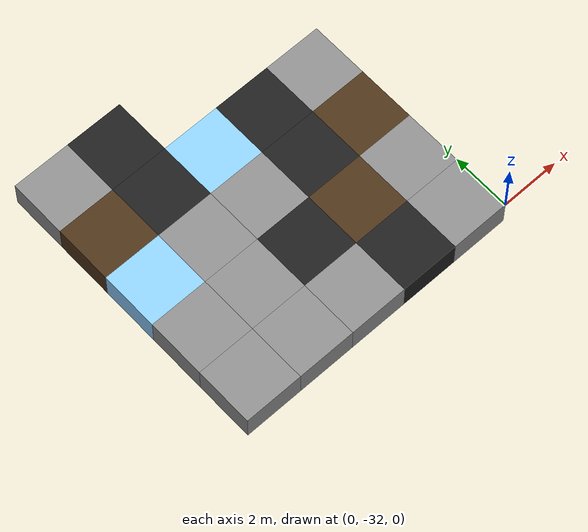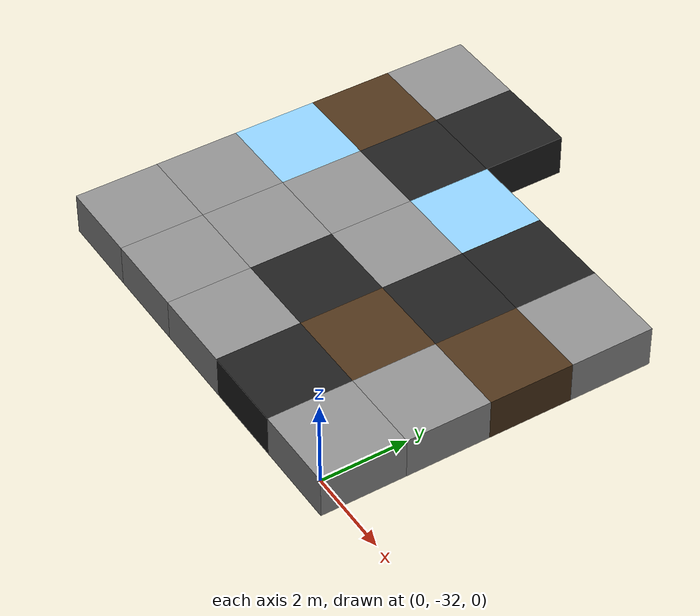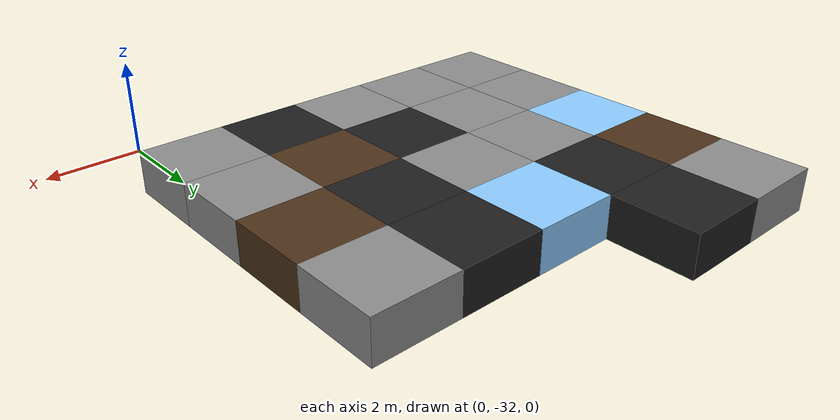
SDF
<sdf version="1.5">
 <world name="squares_example">
  <model name="tile_11_0">
   <static>true</static>
   <pose>-9.000 -31.000 -0.500 0 0 0</pose>
   <link name="link">
    <collision name="col">
     <geometry><box><size>2.0 2.0 1.0</size></box></geometry>
     <surface>
      <friction>
       <ode><mu>0.8</mu><mu2>0.3</mu2><fdir1>1 0 0</fdir1><slip1>0.0</slip1><slip2>0.0</slip2></ode>
       <torsional>
        <coefficient>0.03</coefficient>
        <use_patch_radius>false</use_patch_radius>
        <surface_radius>0.12</surface_radius>
        <ode><slip>0.0</slip></ode>
       </torsional>
      </friction>
      <bounce><restitution_coefficient>0.0</restitution_coefficient><threshold>0.1</threshold></bounce>
      <contact>
       <ode><kp>10000000000.0</kp><kd>10000000.0</kd><max_vel>0.01</max_vel><min_depth>0.0</min_depth></ode>
      </contact>
     </surface>
    </collision>
    <visual name="visual">
     <geometry><box><size>2.0 2.0 1.0</size></box></geometry>
     <material>
      <diffuse>0.55 0.55 0.55 1</diffuse>
      <ambient>0 0 0 0</ambient>
      <specular>0 0 0 1</specular>
      <emissive>0 0 0 1</emissive>
     </material>
    </visual>
   </link>
  </model>
  <model name="tile_12_0">
   <static>true</static>
   <pose>-7.000 -31.000 -0.500 0 0 0</pose>
   <link name="link">
    <collision name="col">
     <geometry><box><size>2.0 2.0 1.0</size></box></geometry>
     <surface>
      <friction>
       <ode><mu>0.8</mu><mu2>0.3</mu2><fdir1>1 0 0</fdir1><slip1>0.0</slip1><slip2>0.0</slip2></ode>
       <torsional>
        <coefficient>0.03</coefficient>
        <use_patch_radius>false</use_patch_radius>
        <surface_radius>0.12</surface_radius>
        <ode><slip>0.0</slip></ode>
       </torsional>
      </friction>
      <bounce><restitution_coefficient>0.0</restitution_coefficient><threshold>0.1</threshold></bounce>
      <contact>
       <ode><kp>10000000000.0</kp><kd>10000000.0</kd><max_vel>0.01</max_vel><min_depth>0.0</min_depth></ode>
      </contact>
     </surface>
    </collision>
    <visual name="visual">
     <geometry><box><size>2.0 2.0 1.0</size></box></geometry>
     <material>
      <diffuse>0.55 0.55 0.55 1</diffuse>
      <ambient>0 0 0 0</ambient>
      <specular>0 0 0 1</specular>
      <emissive>0 0 0 1</emissive>
     </material>
    </visual>
   </link>
  </model>
  <model name="tile_13_0">
   <static>true</static>
   <pose>-5.000 -31.000 -0.500 0 0 0</pose>
   <link name="link">
    <collision name="col">
     <geometry><box><size>2.0 2.0 1.0</size></box></geometry>
     <surface>
      <friction>
       <ode><mu>0.8</mu><mu2>0.3</mu2><fdir1>1 0 0</fdir1><slip1>0.0</slip1><slip2>0.0</slip2></ode>
       <torsional>
        <coefficient>0.03</coefficient>
        <use_patch_radius>false</use_patch_radius>
        <surface_radius>0.12</surface_radius>
        <ode><slip>0.0</slip></ode>
       </torsional>
      </friction>
      <bounce><restitution_coefficient>0.0</restitution_coefficient><threshold>0.1</threshold></bounce>
      <contact>
       <ode><kp>10000000000.0</kp><kd>10000000.0</kd><max_vel>0.01</max_vel><min_depth>0.0</min_depth></ode>
      </contact>
     </surface>
    </collision>
    <visual name="visual">
     <geometry><box><size>2.0 2.0 1.0</size></box></geometry>
     <material>
      <diffuse>0.55 0.55 0.55 1</diffuse>
      <ambient>0 0 0 0</ambient>
      <specular>0 0 0 1</specular>
      <emissive>0 0 0 1</emissive>
     </material>
    </visual>
   </link>
  </model>
  <model name="tile_14_0">
   <static>true</static>
   <pose>-3.000 -31.000 -0.500 0 0 0</pose>
   <link name="link">
    <collision name="col">
     <geometry><box><size>2.0 2.0 1.0</size></box></geometry>
     <surface>
      <friction>
       <ode><mu>0.4</mu><mu2>0.15</mu2><fdir1>1 0 0</fdir1><slip1>0.0</slip1><slip2>0.0</slip2></ode>
       <torsional>
        <coefficient>0.03</coefficient>
        <use_patch_radius>false</use_patch_radius>
        <surface_radius>0.12</surface_radius>
        <ode><slip>0.0</slip></ode>
       </torsional>
      </friction>
      <bounce><restitution_coefficient>0.0</restitution_coefficient><threshold>0.1</threshold></bounce>
      <contact>
       <ode><kp>1000000000.0</kp><kd>1000000.0</kd><max_vel>0.01</max_vel><min_depth>0.0</min_depth></ode>
      </contact>
     </surface>
    </collision>
    <visual name="visual">
     <geometry><box><size>2.0 2.0 1.0</size></box></geometry>
     <material>
      <diffuse>0.12 0.12 0.12 1</diffuse>
      <ambient>0 0 0 0</ambient>
      <specular>0 0 0 1</specular>
      <emissive>0 0 0 1</emissive>
     </material>
    </visual>
   </link>
  </model>
  <model name="tile_15_0">
   <static>true</static>
   <pose>-1.000 -31.000 -0.500 0 0 0</pose>
   <link name="link">
    <collision name="col">
     <geometry><box><size>2.0 2.0 1.0</size></box></geometry>
     <surface>
      <friction>
       <ode><mu>0.8</mu><mu2>0.3</mu2><fdir1>1 0 0</fdir1><slip1>0.0</slip1><slip2>0.0</slip2></ode>
       <torsional>
        <coefficient>0.03</coefficient>
        <use_patch_radius>false</use_patch_radius>
        <surface_radius>0.12</surface_radius>
        <ode><slip>0.0</slip></ode>
       </torsional>
      </friction>
      <bounce><restitution_coefficient>0.0</restitution_coefficient><threshold>0.1</threshold></bounce>
      <contact>
       <ode><kp>10000000000.0</kp><kd>10000000.0</kd><max_vel>0.01</max_vel><min_depth>0.0</min_depth></ode>
      </contact>
     </surface>
    </collision>
    <visual name="visual">
     <geometry><box><size>2.0 2.0 1.0</size></box></geometry>
     <material>
      <diffuse>0.55 0.55 0.55 1</diffuse>
      <ambient>0 0 0 0</ambient>
      <specular>0 0 0 1</specular>
      <emissive>0 0 0 1</emissive>
     </material>
    </visual>
   </link>
  </model>
  <model name="tile_11_1">
   <static>true</static>
   <pose>-9.000 -29.000 -0.500 0 0 0</pose>
   <link name="link">
    <collision name="col">
     <geometry><box><size>2.0 2.0 1.0</size></box></geometry>
     <surface>
      <friction>
       <ode><mu>0.8</mu><mu2>0.3</mu2><fdir1>1 0 0</fdir1><slip1>0.0</slip1><slip2>0.0</slip2></ode>
       <torsional>
        <coefficient>0.03</coefficient>
        <use_patch_radius>false</use_patch_radius>
        <surface_radius>0.12</surface_radius>
        <ode><slip>0.0</slip></ode>
       </torsional>
      </friction>
      <bounce><restitution_coefficient>0.0</restitution_coefficient><threshold>0.1</threshold></bounce>
      <contact>
       <ode><kp>10000000000.0</kp><kd>10000000.0</kd><max_vel>0.01</max_vel><min_depth>0.0</min_depth></ode>
      </contact>
     </surface>
    </collision>
    <visual name="visual">
     <geometry><box><size>2.0 2.0 1.0</size></box></geometry>
     <material>
      <diffuse>0.55 0.55 0.55 1</diffuse>
      <ambient>0 0 0 0</ambient>
      <specular>0 0 0 1</specular>
      <emissive>0 0 0 1</emissive>
     </material>
    </visual>
   </link>
  </model>
  <model name="tile_12_1">
   <static>true</static>
   <pose>-7.000 -29.000 -0.500 0 0 0</pose>
   <link name="link">
    <collision name="col">
     <geometry><box><size>2.0 2.0 1.0</size></box></geometry>
     <surface>
      <friction>
       <ode><mu>0.8</mu><mu2>0.3</mu2><fdir1>1 0 0</fdir1><slip1>0.0</slip1><slip2>0.0</slip2></ode>
       <torsional>
        <coefficient>0.03</coefficient>
        <use_patch_radius>false</use_patch_radius>
        <surface_radius>0.12</surface_radius>
        <ode><slip>0.0</slip></ode>
       </torsional>
      </friction>
      <bounce><restitution_coefficient>0.0</restitution_coefficient><threshold>0.1</threshold></bounce>
      <contact>
       <ode><kp>10000000000.0</kp><kd>10000000.0</kd><max_vel>0.01</max_vel><min_depth>0.0</min_depth></ode>
      </contact>
     </surface>
    </collision>
    <visual name="visual">
     <geometry><box><size>2.0 2.0 1.0</size></box></geometry>
     <material>
      <diffuse>0.55 0.55 0.55 1</diffuse>
      <ambient>0 0 0 0</ambient>
      <specular>0 0 0 1</specular>
      <emissive>0 0 0 1</emissive>
     </material>
    </visual>
   </link>
  </model>
  <model name="tile_13_1">
   <static>true</static>
   <pose>-5.000 -29.000 -0.500 0 0 0</pose>
   <link name="link">
    <collision name="col">
     <geometry><box><size>2.0 2.0 1.0</size></box></geometry>
     <surface>
      <friction>
       <ode><mu>0.4</mu><mu2>0.15</mu2><fdir1>1 0 0</fdir1><slip1>0.0</slip1><slip2>0.0</slip2></ode>
       <torsional>
        <coefficient>0.03</coefficient>
        <use_patch_radius>false</use_patch_radius>
        <surface_radius>0.12</surface_radius>
        <ode><slip>0.0</slip></ode>
       </torsional>
      </friction>
      <bounce><restitution_coefficient>0.0</restitution_coefficient><threshold>0.1</threshold></bounce>
      <contact>
       <ode><kp>1000000000.0</kp><kd>1000000.0</kd><max_vel>0.01</max_vel><min_depth>0.0</min_depth></ode>
      </contact>
     </surface>
    </collision>
    <visual name="visual">
     <geometry><box><size>2.0 2.0 1.0</size></box></geometry>
     <material>
      <diffuse>0.12 0.12 0.12 1</diffuse>
      <ambient>0 0 0 0</ambient>
      <specular>0 0 0 1</specular>
      <emissive>0 0 0 1</emissive>
     </material>
    </visual>
   </link>
  </model>
  <model name="tile_14_1">
   <static>true</static>
   <pose>-3.000 -29.000 -0.500 0 0 0</pose>
   <link name="link">
    <collision name="col">
     <geometry><box><size>2.0 2.0 1.0</size></box></geometry>
     <surface>
      <friction>
       <ode><mu>0.6</mu><mu2>0.4</mu2><fdir1>1 0 0</fdir1><slip1>0.08</slip1><slip2>0.08</slip2></ode>
       <torsional>
        <coefficient>0.03</coefficient>
        <use_patch_radius>false</use_patch_radius>
        <surface_radius>0.12</surface_radius>
        <ode><slip>0.0</slip></ode>
       </torsional>
      </friction>
      <bounce><restitution_coefficient>0.0</restitution_coefficient><threshold>0.1</threshold></bounce>
      <contact>
       <ode><kp>1000000.0</kp><kd>10000.0</kd><max_vel>0.01</max_vel><min_depth>0.0</min_depth></ode>
      </contact>
     </surface>
    </collision>
    <visual name="visual">
     <geometry><box><size>2.0 2.0 1.0</size></box></geometry>
     <material>
      <diffuse>0.30 0.20 0.10 1</diffuse>
      <ambient>0 0 0 0</ambient>
      <specular>0 0 0 1</specular>
      <emissive>0 0 0 1</emissive>
     </material>
    </visual>
   </link>
  </model>
  <model name="tile_15_1">
   <static>true</static>
   <pose>-1.000 -29.000 -0.500 0 0 0</pose>
   <link name="link">
    <collision name="col">
     <geometry><box><size>2.0 2.0 1.0</size></box></geometry>
     <surface>
      <friction>
       <ode><mu>0.8</mu><mu2>0.3</mu2><fdir1>1 0 0</fdir1><slip1>0.0</slip1><slip2>0.0</slip2></ode>
       <torsional>
        <coefficient>0.03</coefficient>
        <use_patch_radius>false</use_patch_radius>
        <surface_radius>0.12</surface_radius>
        <ode><slip>0.0</slip></ode>
       </torsional>
      </friction>
      <bounce><restitution_coefficient>0.0</restitution_coefficient><threshold>0.1</threshold></bounce>
      <contact>
       <ode><kp>10000000000.0</kp><kd>10000000.0</kd><max_vel>0.01</max_vel><min_depth>0.0</min_depth></ode>
      </contact>
     </surface>
    </collision>
    <visual name="visual">
     <geometry><box><size>2.0 2.0 1.0</size></box></geometry>
     <material>
      <diffuse>0.55 0.55 0.55 1</diffuse>
      <ambient>0 0 0 0</ambient>
      <specular>0 0 0 1</specular>
      <emissive>0 0 0 1</emissive>
     </material>
    </visual>
   </link>
  </model>
  <model name="tile_11_2">
   <static>true</static>
   <pose>-9.000 -27.000 -0.500 0 0 0</pose>
   <link name="link">
    <collision name="col">
     <geometry><box><size>2.0 2.0 1.0</size></box></geometry>
     <surface>
      <friction>
       <ode><mu>0.03</mu><mu2>0.02</mu2><fdir1>1 0 0</fdir1><slip1>0.03</slip1><slip2>0.03</slip2></ode>
       <torsional>
        <coefficient>0.005</coefficient>
        <use_patch_radius>false</use_patch_radius>
        <surface_radius>0.12</surface_radius>
        <ode><slip>0.01</slip></ode>
       </torsional>
      </friction>
      <bounce><restitution_coefficient>0.0</restitution_coefficient><threshold>0.1</threshold></bounce>
      <contact>
       <ode><kp>10000000.0</kp><kd>1000.0</kd><max_vel>0.01</max_vel><min_depth>0.0</min_depth></ode>
      </contact>
     </surface>
    </collision>
    <visual name="visual">
     <geometry><box><size>2.0 2.0 1.0</size></box></geometry>
     <material>
      <diffuse>0.55 0.80 1.00 1</diffuse>
      <ambient>0 0 0 0</ambient>
      <specular>0 0 0 1</specular>
      <emissive>0 0 0 1</emissive>
     </material>
    </visual>
   </link>
  </model>
  <model name="tile_12_2">
   <static>true</static>
   <pose>-7.000 -27.000 -0.500 0 0 0</pose>
   <link name="link">
    <collision name="col">
     <geometry><box><size>2.0 2.0 1.0</size></box></geometry>
     <surface>
      <friction>
       <ode><mu>0.8</mu><mu2>0.3</mu2><fdir1>1 0 0</fdir1><slip1>0.0</slip1><slip2>0.0</slip2></ode>
       <torsional>
        <coefficient>0.03</coefficient>
        <use_patch_radius>false</use_patch_radius>
        <surface_radius>0.12</surface_radius>
        <ode><slip>0.0</slip></ode>
       </torsional>
      </friction>
      <bounce><restitution_coefficient>0.0</restitution_coefficient><threshold>0.1</threshold></bounce>
      <contact>
       <ode><kp>10000000000.0</kp><kd>10000000.0</kd><max_vel>0.01</max_vel><min_depth>0.0</min_depth></ode>
      </contact>
     </surface>
    </collision>
    <visual name="visual">
     <geometry><box><size>2.0 2.0 1.0</size></box></geometry>
     <material>
      <diffuse>0.55 0.55 0.55 1</diffuse>
      <ambient>0 0 0 0</ambient>
      <specular>0 0 0 1</specular>
      <emissive>0 0 0 1</emissive>
     </material>
    </visual>
   </link>
  </model>
  <model name="tile_13_2">
   <static>true</static>
   <pose>-5.000 -27.000 -0.500 0 0 0</pose>
   <link name="link">
    <collision name="col">
     <geometry><box><size>2.0 2.0 1.0</size></box></geometry>
     <surface>
      <friction>
       <ode><mu>0.8</mu><mu2>0.3</mu2><fdir1>1 0 0</fdir1><slip1>0.0</slip1><slip2>0.0</slip2></ode>
       <torsional>
        <coefficient>0.03</coefficient>
        <use_patch_radius>false</use_patch_radius>
        <surface_radius>0.12</surface_radius>
        <ode><slip>0.0</slip></ode>
       </torsional>
      </friction>
      <bounce><restitution_coefficient>0.0</restitution_coefficient><threshold>0.1</threshold></bounce>
      <contact>
       <ode><kp>10000000000.0</kp><kd>10000000.0</kd><max_vel>0.01</max_vel><min_depth>0.0</min_depth></ode>
      </contact>
     </surface>
    </collision>
    <visual name="visual">
     <geometry><box><size>2.0 2.0 1.0</size></box></geometry>
     <material>
      <diffuse>0.55 0.55 0.55 1</diffuse>
      <ambient>0 0 0 0</ambient>
      <specular>0 0 0 1</specular>
      <emissive>0 0 0 1</emissive>
     </material>
    </visual>
   </link>
  </model>
  <model name="tile_14_2">
   <static>true</static>
   <pose>-3.000 -27.000 -0.500 0 0 0</pose>
   <link name="link">
    <collision name="col">
     <geometry><box><size>2.0 2.0 1.0</size></box></geometry>
     <surface>
      <friction>
       <ode><mu>0.4</mu><mu2>0.15</mu2><fdir1>1 0 0</fdir1><slip1>0.0</slip1><slip2>0.0</slip2></ode>
       <torsional>
        <coefficient>0.03</coefficient>
        <use_patch_radius>false</use_patch_radius>
        <surface_radius>0.12</surface_radius>
        <ode><slip>0.0</slip></ode>
       </torsional>
      </friction>
      <bounce><restitution_coefficient>0.0</restitution_coefficient><threshold>0.1</threshold></bounce>
      <contact>
       <ode><kp>1000000000.0</kp><kd>1000000.0</kd><max_vel>0.01</max_vel><min_depth>0.0</min_depth></ode>
      </contact>
     </surface>
    </collision>
    <visual name="visual">
     <geometry><box><size>2.0 2.0 1.0</size></box></geometry>
     <material>
      <diffuse>0.12 0.12 0.12 1</diffuse>
      <ambient>0 0 0 0</ambient>
      <specular>0 0 0 1</specular>
      <emissive>0 0 0 1</emissive>
     </material>
    </visual>
   </link>
  </model>
  <model name="tile_15_2">
   <static>true</static>
   <pose>-1.000 -27.000 -0.500 0 0 0</pose>
   <link name="link">
    <collision name="col">
     <geometry><box><size>2.0 2.0 1.0</size></box></geometry>
     <surface>
      <friction>
       <ode><mu>0.6</mu><mu2>0.4</mu2><fdir1>1 0 0</fdir1><slip1>0.08</slip1><slip2>0.08</slip2></ode>
       <torsional>
        <coefficient>0.03</coefficient>
        <use_patch_radius>false</use_patch_radius>
        <surface_radius>0.12</surface_radius>
        <ode><slip>0.0</slip></ode>
       </torsional>
      </friction>
      <bounce><restitution_coefficient>0.0</restitution_coefficient><threshold>0.1</threshold></bounce>
      <contact>
       <ode><kp>1000000.0</kp><kd>10000.0</kd><max_vel>0.01</max_vel><min_depth>0.0</min_depth></ode>
      </contact>
     </surface>
    </collision>
    <visual name="visual">
     <geometry><box><size>2.0 2.0 1.0</size></box></geometry>
     <material>
      <diffuse>0.30 0.20 0.10 1</diffuse>
      <ambient>0 0 0 0</ambient>
      <specular>0 0 0 1</specular>
      <emissive>0 0 0 1</emissive>
     </material>
    </visual>
   </link>
  </model>
  <model name="tile_11_3">
   <static>true</static>
   <pose>-9.000 -25.000 -0.500 0 0 0</pose>
   <link name="link">
    <collision name="col">
     <geometry><box><size>2.0 2.0 1.0</size></box></geometry>
     <surface>
      <friction>
       <ode><mu>0.6</mu><mu2>0.4</mu2><fdir1>1 0 0</fdir1><slip1>0.08</slip1><slip2>0.08</slip2></ode>
       <torsional>
        <coefficient>0.03</coefficient>
        <use_patch_radius>false</use_patch_radius>
        <surface_radius>0.12</surface_radius>
        <ode><slip>0.0</slip></ode>
       </torsional>
      </friction>
      <bounce><restitution_coefficient>0.0</restitution_coefficient><threshold>0.1</threshold></bounce>
      <contact>
       <ode><kp>1000000.0</kp><kd>10000.0</kd><max_vel>0.01</max_vel><min_depth>0.0</min_depth></ode>
      </contact>
     </surface>
    </collision>
    <visual name="visual">
     <geometry><box><size>2.0 2.0 1.0</size></box></geometry>
     <material>
      <diffuse>0.30 0.20 0.10 1</diffuse>
      <ambient>0 0 0 0</ambient>
      <specular>0 0 0 1</specular>
      <emissive>0 0 0 1</emissive>
     </material>
    </visual>
   </link>
  </model>
  <model name="tile_12_3">
   <static>true</static>
   <pose>-7.000 -25.000 -0.500 0 0 0</pose>
   <link name="link">
    <collision name="col">
     <geometry><box><size>2.0 2.0 1.0</size></box></geometry>
     <surface>
      <friction>
       <ode><mu>0.4</mu><mu2>0.15</mu2><fdir1>1 0 0</fdir1><slip1>0.0</slip1><slip2>0.0</slip2></ode>
       <torsional>
        <coefficient>0.03</coefficient>
        <use_patch_radius>false</use_patch_radius>
        <surface_radius>0.12</surface_radius>
        <ode><slip>0.0</slip></ode>
       </torsional>
      </friction>
      <bounce><restitution_coefficient>0.0</restitution_coefficient><threshold>0.1</threshold></bounce>
      <contact>
       <ode><kp>1000000000.0</kp><kd>1000000.0</kd><max_vel>0.01</max_vel><min_depth>0.0</min_depth></ode>
      </contact>
     </surface>
    </collision>
    <visual name="visual">
     <geometry><box><size>2.0 2.0 1.0</size></box></geometry>
     <material>
      <diffuse>0.12 0.12 0.12 1</diffuse>
      <ambient>0 0 0 0</ambient>
      <specular>0 0 0 1</specular>
      <emissive>0 0 0 1</emissive>
     </material>
    </visual>
   </link>
  </model>
  <model name="tile_13_3">
   <static>true</static>
   <pose>-5.000 -25.000 -0.500 0 0 0</pose>
   <link name="link">
    <collision name="col">
     <geometry><box><size>2.0 2.0 1.0</size></box></geometry>
     <surface>
      <friction>
       <ode><mu>0.03</mu><mu2>0.02</mu2><fdir1>1 0 0</fdir1><slip1>0.03</slip1><slip2>0.03</slip2></ode>
       <torsional>
        <coefficient>0.005</coefficient>
        <use_patch_radius>false</use_patch_radius>
        <surface_radius>0.12</surface_radius>
        <ode><slip>0.01</slip></ode>
       </torsional>
      </friction>
      <bounce><restitution_coefficient>0.0</restitution_coefficient><threshold>0.1</threshold></bounce>
      <contact>
       <ode><kp>10000000.0</kp><kd>1000.0</kd><max_vel>0.01</max_vel><min_depth>0.0</min_depth></ode>
      </contact>
     </surface>
    </collision>
    <visual name="visual">
     <geometry><box><size>2.0 2.0 1.0</size></box></geometry>
     <material>
      <diffuse>0.55 0.80 1.00 1</diffuse>
      <ambient>0 0 0 0</ambient>
      <specular>0 0 0 1</specular>
      <emissive>0 0 0 1</emissive>
     </material>
    </visual>
   </link>
  </model>
  <model name="tile_14_3">
   <static>true</static>
   <pose>-3.000 -25.000 -0.500 0 0 0</pose>
   <link name="link">
    <collision name="col">
     <geometry><box><size>2.0 2.0 1.0</size></box></geometry>
     <surface>
      <friction>
       <ode><mu>0.4</mu><mu2>0.15</mu2><fdir1>1 0 0</fdir1><slip1>0.0</slip1><slip2>0.0</slip2></ode>
       <torsional>
        <coefficient>0.03</coefficient>
        <use_patch_radius>false</use_patch_radius>
        <surface_radius>0.12</surface_radius>
        <ode><slip>0.0</slip></ode>
       </torsional>
      </friction>
      <bounce><restitution_coefficient>0.0</restitution_coefficient><threshold>0.1</threshold></bounce>
      <contact>
       <ode><kp>1000000000.0</kp><kd>1000000.0</kd><max_vel>0.01</max_vel><min_depth>0.0</min_depth></ode>
      </contact>
     </surface>
    </collision>
    <visual name="visual">
     <geometry><box><size>2.0 2.0 1.0</size></box></geometry>
     <material>
      <diffuse>0.12 0.12 0.12 1</diffuse>
      <ambient>0 0 0 0</ambient>
      <specular>0 0 0 1</specular>
      <emissive>0 0 0 1</emissive>
     </material>
    </visual>
   </link>
  </model>
  <model name="tile_15_3">
   <static>true</static>
   <pose>-1.000 -25.000 -0.500 0 0 0</pose>
   <link name="link">
    <collision name="col">
     <geometry><box><size>2.0 2.0 1.0</size></box></geometry>
     <surface>
      <friction>
       <ode><mu>0.8</mu><mu2>0.3</mu2><fdir1>1 0 0</fdir1><slip1>0.0</slip1><slip2>0.0</slip2></ode>
       <torsional>
        <coefficient>0.03</coefficient>
        <use_patch_radius>false</use_patch_radius>
        <surface_radius>0.12</surface_radius>
        <ode><slip>0.0</slip></ode>
       </torsional>
      </friction>
      <bounce><restitution_coefficient>0.0</restitution_coefficient><threshold>0.1</threshold></bounce>
      <contact>
       <ode><kp>10000000000.0</kp><kd>10000000.0</kd><max_vel>0.01</max_vel><min_depth>0.0</min_depth></ode>
      </contact>
     </surface>
    </collision>
    <visual name="visual">
     <geometry><box><size>2.0 2.0 1.0</size></box></geometry>
     <material>
      <diffuse>0.55 0.55 0.55 1</diffuse>
      <ambient>0 0 0 0</ambient>
      <specular>0 0 0 1</specular>
      <emissive>0 0 0 1</emissive>
     </material>
    </visual>
   </link>
  </model>
  <model name="tile_11_4">
   <static>true</static>
   <pose>-9.000 -23.000 -0.500 0 0 0</pose>
   <link name="link">
    <collision name="col">
     <geometry><box><size>2.0 2.0 1.0</size></box></geometry>
     <surface>
      <friction>
       <ode><mu>0.8</mu><mu2>0.3</mu2><fdir1>1 0 0</fdir1><slip1>0.0</slip1><slip2>0.0</slip2></ode>
       <torsional>
        <coefficient>0.03</coefficient>
        <use_patch_radius>false</use_patch_radius>
        <surface_radius>0.12</surface_radius>
        <ode><slip>0.0</slip></ode>
       </torsional>
      </friction>
      <bounce><restitution_coefficient>0.0</restitution_coefficient><threshold>0.1</threshold></bounce>
      <contact>
       <ode><kp>10000000000.0</kp><kd>10000000.0</kd><max_vel>0.01</max_vel><min_depth>0.0</min_depth></ode>
      </contact>
     </surface>
    </collision>
    <visual name="visual">
     <geometry><box><size>2.0 2.0 1.0</size></box></geometry>
     <material>
      <diffuse>0.55 0.55 0.55 1</diffuse>
      <ambient>0 0 0 0</ambient>
      <specular>0 0 0 1</specular>
      <emissive>0 0 0 1</emissive>
     </material>
    </visual>
   </link>
  </model>
  <model name="tile_12_4">
   <static>true</static>
   <pose>-7.000 -23.000 -0.500 0 0 0</pose>
   <link name="link">
    <collision name="col">
     <geometry><box><size>2.0 2.0 1.0</size></box></geometry>
     <surface>
      <friction>
       <ode><mu>0.4</mu><mu2>0.15</mu2><fdir1>1 0 0</fdir1><slip1>0.0</slip1><slip2>0.0</slip2></ode>
       <torsional>
        <coefficient>0.03</coefficient>
        <use_patch_radius>false</use_patch_radius>
        <surface_radius>0.12</surface_radius>
        <ode><slip>0.0</slip></ode>
       </torsional>
      </friction>
      <bounce><restitution_coefficient>0.0</restitution_coefficient><threshold>0.1</threshold></bounce>
      <contact>
       <ode><kp>1000000000.0</kp><kd>1000000.0</kd><max_vel>0.01</max_vel><min_depth>0.0</min_depth></ode>
      </contact>
     </surface>
    </collision>
    <visual name="visual">
     <geometry><box><size>2.0 2.0 1.0</size></box></geometry>
     <material>
      <diffuse>0.12 0.12 0.12 1</diffuse>
      <ambient>0 0 0 0</ambient>
      <specular>0 0 0 1</specular>
      <emissive>0 0 0 1</emissive>
     </material>
    </visual>
   </link>
  </model>
 </world>
</sdf>
